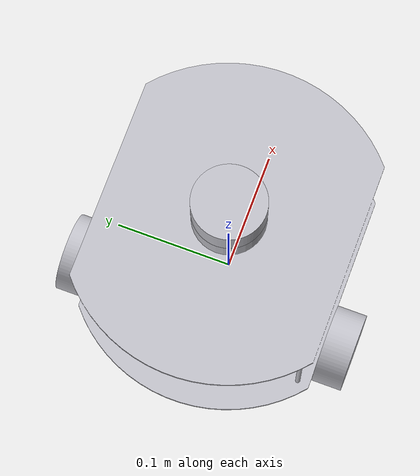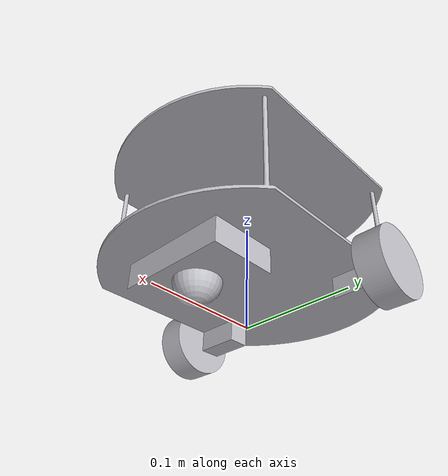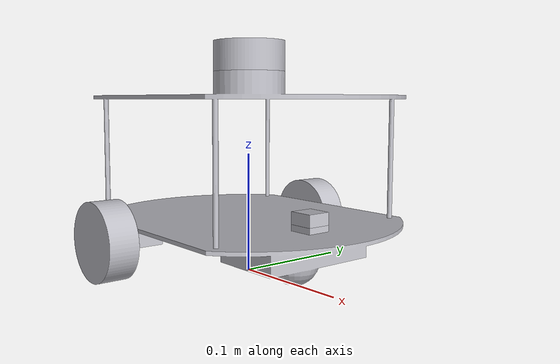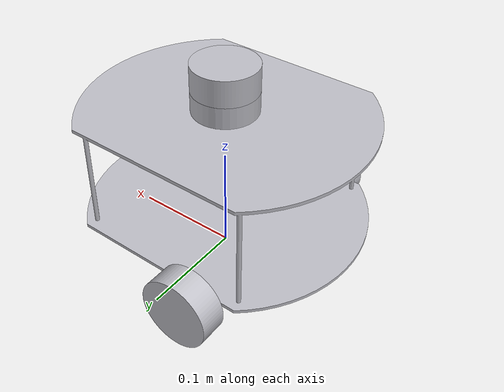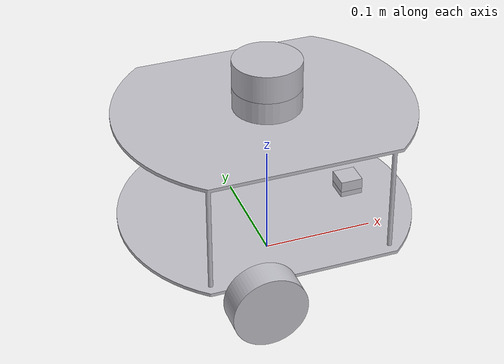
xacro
<?xml version="1.0" ?>
<robot name="myrobot" xmlns:xacro="http://www.ros.org/wiki/xacro">

<xacro:include filename="$(find myrobot_description)/urdf/materials.xacro" />
<xacro:include filename="$(find myrobot_description)/urdf/myrobot.trans" />
<xacro:include filename="$(find myrobot_description)/urdf/myrobot.gazebo" />
<link name="base_link">
  <inertial>
    <origin xyz="0.012478399543659527 -6.003927390436037e-06 0.07924132282970138" rpy="0 0 0"/>
    <mass value="0.6272575004543296"/>
    <inertia ixx="0.003394" iyy="0.004223" izz="0.003699" ixy="0.0" iyz="-0.0" ixz="0.000453"/>
  </inertial>
  <visual>
    <origin xyz="0 0 0" rpy="0 0 0"/>
    <geometry>
      <mesh filename="package://myrobot_description/meshes/base_link.stl" scale="0.001 0.001 0.001"/>
    </geometry>
    <material name="silver"/>
  </visual>
  <collision>
    <origin xyz="0 0 0" rpy="0 0 0"/>
    <geometry>
      <mesh filename="package://myrobot_description/meshes/base_link.stl" scale="0.001 0.001 0.001"/>
    </geometry>
  </collision>
</link>

<link name="right_wheel_1">
  <inertial>
    <origin xyz="-9.163798662253919e-08 -0.012500000000000178 0.0" rpy="0 0 0"/>
    <mass value="0.07715064333823558"/>
    <inertia ixx="2.4e-05" iyy="4.1e-05" izz="2.4e-05" ixy="0.0" iyz="0.0" ixz="0.0"/>
  </inertial>
  <visual>
    <origin xyz="0.042661 0.1 -0.033" rpy="0 0 0"/>
    <geometry>
      <mesh filename="package://myrobot_description/meshes/right_wheel_1.stl" scale="0.001 0.001 0.001"/>
    </geometry>
    <material name="silver"/>
  </visual>
  <collision>
    <origin xyz="0.042661 0.1 -0.033" rpy="0 0 0"/>
    <geometry>
      <mesh filename="package://myrobot_description/meshes/right_wheel_1.stl" scale="0.001 0.001 0.001"/>
    </geometry>
  </collision>
</link>

<link name="left_wheel_1">
  <inertial>
    <origin xyz="-9.163798646988353e-08 0.012500000000000094 0.0" rpy="0 0 0"/>
    <mass value="0.07715064333823558"/>
    <inertia ixx="2.4e-05" iyy="4.1e-05" izz="2.4e-05" ixy="-0.0" iyz="0.0" ixz="-0.0"/>
  </inertial>
  <visual>
    <origin xyz="0.042661 -0.1 -0.033" rpy="0 0 0"/>
    <geometry>
      <mesh filename="package://myrobot_description/meshes/left_wheel_1.stl" scale="0.001 0.001 0.001"/>
    </geometry>
    <material name="silver"/>
  </visual>
  <collision>
    <origin xyz="0.042661 -0.1 -0.033" rpy="0 0 0"/>
    <geometry>
      <mesh filename="package://myrobot_description/meshes/left_wheel_1.stl" scale="0.001 0.001 0.001"/>
    </geometry>
  </collision>
</link>

<link name="lidar_1">
  <inertial>
    <origin xyz="4.730878701597883e-11 0.0 0.012500000000000011" rpy="0 0 0"/>
    <mass value="0.5548838024402986"/>
    <inertia ixx="0.000154" iyy="0.000154" izz="0.00025" ixy="0.0" iyz="0.0" ixz="0.0"/>
  </inertial>
  <visual>
    <origin xyz="-0.0 -0.0 -0.169" rpy="0 0 0"/>
    <geometry>
      <mesh filename="package://myrobot_description/meshes/lidar_1.stl" scale="0.001 0.001 0.001"/>
    </geometry>
    <material name="silver"/>
  </visual>
  <collision>
    <origin xyz="-0.0 -0.0 -0.169" rpy="0 0 0"/>
    <geometry>
      <mesh filename="package://myrobot_description/meshes/lidar_1.stl" scale="0.001 0.001 0.001"/>
    </geometry>
  </collision>
</link>

<link name="imu_link__1">
  <inertial>
    <origin xyz="-2.53123059498761e-07 -2.040738248765099e-08 0.0049999999999999975" rpy="0 0 0"/>
    <mass value="0.031399999999999983"/>
    <inertia ixx="1e-06" iyy="1e-06" izz="2e-06" ixy="-0.0" iyz="0.0" ixz="0.0"/>
  </inertial>
  <visual>
    <origin xyz="-0.076228 0.001585 -0.051" rpy="0 0 0"/>
    <geometry>
      <mesh filename="package://myrobot_description/meshes/imu_link__1.stl" scale="0.001 0.001 0.001"/>
    </geometry>
    <material name="silver"/>
  </visual>
  <collision>
    <origin xyz="-0.076228 0.001585 -0.051" rpy="0 0 0"/>
    <geometry>
      <mesh filename="package://myrobot_description/meshes/imu_link__1.stl" scale="0.001 0.001 0.001"/>
    </geometry>
  </collision>
</link>

<joint name="right_joint" type="continuous">
  <origin xyz="-0.042661 -0.1 0.033" rpy="0 0 0"/>
  <parent link="base_link"/>
  <child link="right_wheel_1"/>
  <axis xyz="-0.0 1.0 0.0"/>
</joint>

<joint name="left_joint" type="continuous">
  <origin xyz="-0.042661 0.1 0.033" rpy="0 0 0"/>
  <parent link="base_link"/>
  <child link="left_wheel_1"/>
  <axis xyz="0.0 1.0 0.0"/>
</joint>

<joint name="ldiar_joint" type="fixed">
  <origin xyz="0.0 0.0 0.169" rpy="0 0 0"/>
  <parent link="base_link"/>
  <child link="lidar_1"/>
</joint>

<joint name="imu_joint" type="fixed">
  <origin xyz="0.076228 -0.001585 0.051" rpy="0 0 0"/>
  <parent link="base_link"/>
  <child link="imu_link__1"/>
</joint>

</robot>

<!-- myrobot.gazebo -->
<robot name="myrobot" xmlns:xacro="http://www.ros.org/wiki/xacro" >

<xacro:property name="body_color" value="Gazebo/Silver" />

<gazebo>
  <plugin name="control" filename="libgazebo_ros_control.so"/>
</gazebo>
<gazebo reference="base_link">
  <material>${body_color}</material>
  <mu1>0.2</mu1>
  <mu2>0.2</mu2>
  <selfCollide>true</selfCollide>
  <gravity>true</gravity>
</gazebo>

<gazebo reference="right_wheel_1">
  <material>${body_color}</material>
  <mu1>1500</mu1>
  <mu2>1500</mu2>
  <selfCollide>true</selfCollide>
</gazebo>

<gazebo reference="left_wheel_1">
  <material>${body_color}</material>
  <mu1>1500</mu1>
  <mu2>1500</mu2>
  <selfCollide>true</selfCollide>
</gazebo>

<gazebo reference="lidar_1">
  <material>${body_color}</material>
  <mu1>0.2</mu1>
  <mu2>0.2</mu2>
  <selfCollide>true</selfCollide>
</gazebo>

<gazebo reference="imu_link__1">
  <material>${body_color}</material>
  <mu1>0.2</mu1>
  <mu2>0.2</mu2>
  <selfCollide>true</selfCollide>
</gazebo>
<gazebo>
  <plugin name="differential_drive_controller" filename="libgazebo_ros_diff_drive.so">

    <!-- Plugin update rate in Hz -->
    <updateRate>100</updateRate>

    <!-- Name of left joint, defaults to `left_joint` -->
    <leftJoint>left_joint</leftJoint>

    <!-- Name of right joint, defaults to `right_joint` -->
    <rightJoint>right_joint</rightJoint>

    <!-- The distance from the center of one wheel to the other, in meters, defaults to 0.34 m -->
    <wheelSeparation>0.2</wheelSeparation>

    <!-- Diameter of the wheels, in meters, defaults to 0.15 m -->
    <wheelDiameter>0.065</wheelDiameter>

    <!-- Wheel acceleration, in rad/s^2, defaults to 0.0 rad/s^2 -->
    <wheelAcceleration>1.0</wheelAcceleration>

    <!-- Maximum torque which the wheels can produce, in Nm, defaults to 5 Nm -->
    <wheelTorque>20</wheelTorque>

    <!-- Topic to receive geometry_msgs/Twist message commands, defaults to `cmd_vel` -->
    <commandTopic>cmd_vel</commandTopic>

    <!-- Topic to publish nav_msgs/Odometry messages, defaults to `odom` -->
    <odometryTopic>odom</odometryTopic>

    <!-- Odometry frame, defaults to `odom` -->
    <odometryFrame>odom</odometryFrame>

    <!-- Robot frame to calculate odometry from, defaults to `base_footprint` -->
    <robotBaseFrame>base_link</robotBaseFrame>

    <!-- Odometry source, 0 for ENCODER, 1 for WORLD, defaults to WORLD -->
    <odometrySource>1</odometrySource>

    <!-- Set to true to publish transforms for the wheel links, defaults to false -->
    <publishWheelTF>false</publishWheelTF>

    <!-- Set to true to publish transforms for the odometry, defaults to true -->
    <publishOdom>true</publishOdom>

    <!-- Set to true to publish sensor_msgs/JointState on /joint_states for the wheel joints, defaults to false -->
    <publishWheelJointState>true</publishWheelJointState>

    <!-- Set to true to swap right and left wheels, defaults to true -->
    <legacyMode>false</legacyMode>
  </plugin>
</gazebo>
<!-- hokuyo -->
  <gazebo reference="lidar_1">
    <sensor type="ray" name="head_hokuyo_sensor">
      <pose>0 0 0 0 0 0</pose>
      <visualize>true</visualize>
      <update_rate>40</update_rate>
      <ray>
        <scan>
          <horizontal>
            <samples>720</samples>
            <resolution>0.85</resolution>
            <min_angle>-1.570796</min_angle>
            <max_angle>1.570796</max_angle>
          </horizontal>
        </scan>
        <range>
          <min>0.10</min>
          <max>30.0</max>
          <resolution>0.01</resolution>
        </range>
        <noise>
          <type>gaussian</type>
          <mean>0.0</mean>
          <stddev>0.01</stddev>
        </noise>
      </ray>
      <plugin name="gazebo_ros_head_hokuyo_controller" filename="libgazebo_ros_laser.so">
        <topicName>/scan</topicName>
        <frameName>lidar_1</frameName>
      </plugin>
    </sensor>
  </gazebo>
    <gazebo reference="imu_link__1">
    <gravity>true</gravity>
    <sensor name="imu_sensor" type="imu">
      <always_on>true</always_on>
      <update_rate>100</update_rate>
      <visualize>true</visualize>
      <topic>__default_topic__</topic>
      <plugin filename="libgazebo_ros_imu_sensor.so" name="imu_plugin">
        <topicName>imu</topicName>
        <bodyName>imu_link</bodyName>
        <updateRateHZ>10.0</updateRateHZ>
        <gaussianNoise>0.0</gaussianNoise>
        <xyzOffset>0 0 0</xyzOffset>
        <rpyOffset>0 0 0</rpyOffset>
        <frameName>imu_link</frameName>
        <initialOrientationAsReference>false</initialOrientationAsReference>
      </plugin>
      <pose>0 0 0 0 0 0</pose>
    </sensor>
  </gazebo>
</robot>
